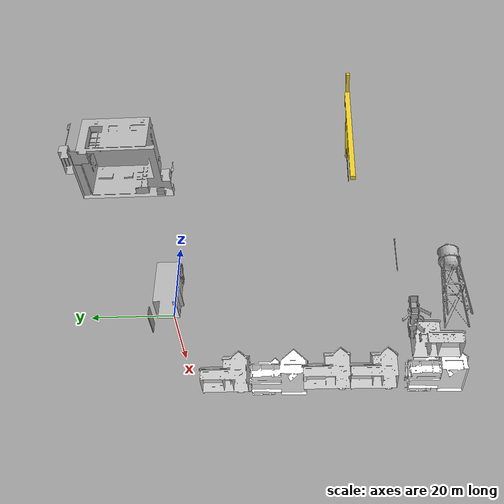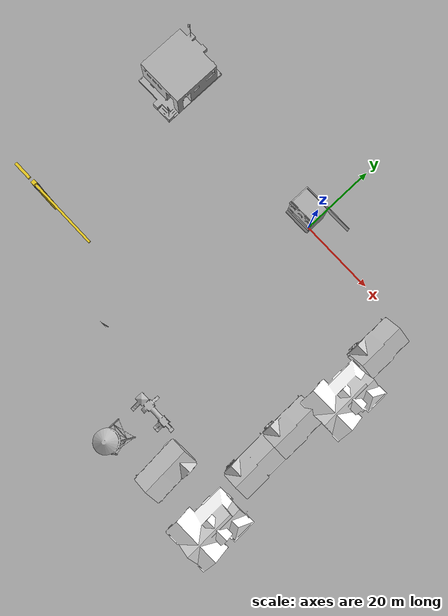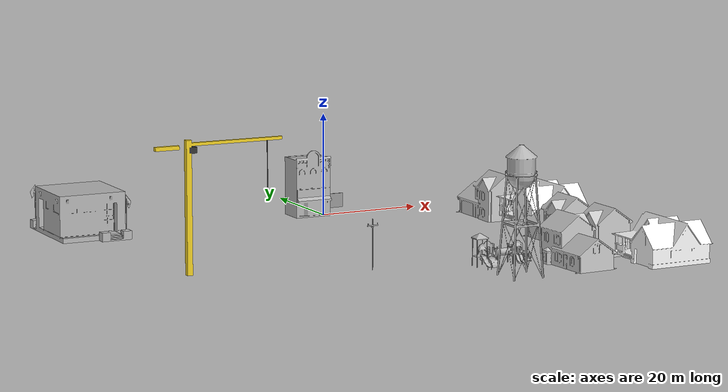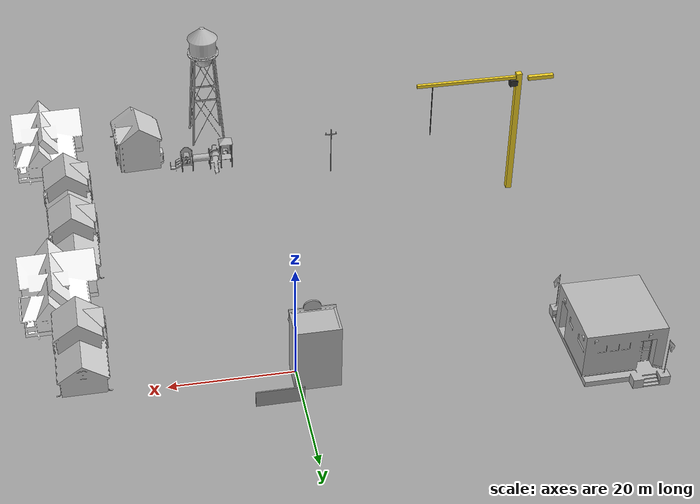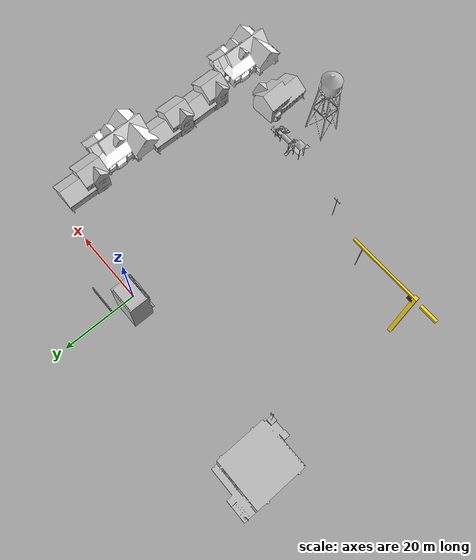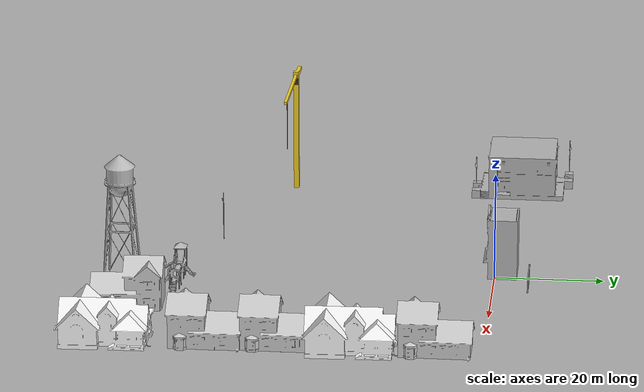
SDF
<?xml version='1.0'?>
<sdf version='1.6'>
  <model name='dev2'>
    <model name='House 1'>
      <static>1</static>
      <link name='link'>
        <collision name='collision'>
          <geometry>
            <mesh>
              <uri>model://house_1/meshes/house_1.dae</uri>
              <scale>1.5 1.5 1.5</scale>
            </mesh>
          </geometry>
        </collision>
        <visual name='visual'>
          <geometry>
            <mesh>
              <uri>model://house_1/meshes/house_1.dae</uri>
              <scale>1.5 1.5 1.5</scale>
            </mesh>
          </geometry>
          <material>
            <script>
              <uri>model://house_1/materials/scripts</uri>
              <uri>model://house_1/materials/textures</uri>
              <name>House_1/Diffuse</name>
            </script>
            <shader type='normal_map_tangent_space'>
              <normal_map>House_1_Normal.png</normal_map>
            </shader>
          </material>
        </visual>
      </link>
      <pose frame=''>35.6283 -23.3265 -0 0 0 -1.54507</pose>
    </model>
    <model name='House 1_clone'>
      <static>1</static>
      <link name='link'>
        <collision name='collision'>
          <geometry>
            <mesh>
              <uri>model://house_1/meshes/house_1.dae</uri>
              <scale>1.5 1.5 1.5</scale>
            </mesh>
          </geometry>
        </collision>
        <visual name='visual'>
          <geometry>
            <mesh>
              <uri>model://house_1/meshes/house_1.dae</uri>
              <scale>1.5 1.5 1.5</scale>
            </mesh>
          </geometry>
          <material>
            <script>
              <uri>model://house_1/materials/scripts</uri>
              <uri>model://house_1/materials/textures</uri>
              <name>House_1/Diffuse</name>
            </script>
            <shader type='normal_map_tangent_space'>
              <normal_map>House_1_Normal.png</normal_map>
            </shader>
          </material>
        </visual>
      </link>
      <pose frame=''>35.5837 -66.3065 0 0 0 -1.54507</pose>
    </model>
    <model name='House 3'>
      <static>1</static>
      <link name='link'>
        <collision name='collision'>
          <geometry>
            <mesh>
              <uri>model://house_3/meshes/house_3.dae</uri>
              <scale>1.5 1.5 1.5</scale>
            </mesh>
          </geometry>
        </collision>
        <visual name='visual'>
          <geometry>
            <mesh>
              <uri>model://house_3/meshes/house_3.dae</uri>
              <scale>1.5 1.5 1.5</scale>
            </mesh>
          </geometry>
          <material>
            <script>
              <uri>model://house_3/materials/scripts</uri>
              <uri>model://house_3/materials/textures</uri>
              <uri>model://house_1/materials/textures</uri>
              <name>House_3/Diffuse</name>
            </script>
            <shader type='normal_map_tangent_space'>
              <normal_map>model://house_1/materials/textures/House_1_Normal.png</normal_map>
            </shader>
          </material>
        </visual>
      </link>
      <pose frame=''>32.5908 -8.06289 -1.46227 0 -0 1.57153</pose>
    </model>
    <model name='House 3_clone'>
      <static>1</static>
      <link name='link'>
        <collision name='collision'>
          <geometry>
            <mesh>
              <uri>model://house_3/meshes/house_3.dae</uri>
              <scale>1.5 1.5 1.5</scale>
            </mesh>
          </geometry>
        </collision>
        <visual name='visual'>
          <geometry>
            <mesh>
              <uri>model://house_3/meshes/house_3.dae</uri>
              <scale>1.5 1.5 1.5</scale>
            </mesh>
          </geometry>
          <material>
            <script>
              <uri>model://house_3/materials/scripts</uri>
              <uri>model://house_3/materials/textures</uri>
              <uri>model://house_1/materials/textures</uri>
              <name>House_3/Diffuse</name>
            </script>
            <shader type='normal_map_tangent_space'>
              <normal_map>model://house_1/materials/textures/House_1_Normal.png</normal_map>
            </shader>
          </material>
        </visual>
      </link>
      <pose frame=''>32.0612 -35.724 -1.46227 0 -0 1.57149</pose>
    </model>
    <model name='House 3_clone_0'>
      <static>1</static>
      <link name='link'>
        <collision name='collision'>
          <geometry>
            <mesh>
              <uri>model://house_3/meshes/house_3.dae</uri>
              <scale>1.5 1.5 1.5</scale>
            </mesh>
          </geometry>
        </collision>
        <visual name='visual'>
          <geometry>
            <mesh>
              <uri>model://house_3/meshes/house_3.dae</uri>
              <scale>1.5 1.5 1.5</scale>
            </mesh>
          </geometry>
          <material>
            <script>
              <uri>model://house_3/materials/scripts</uri>
              <uri>model://house_3/materials/textures</uri>
              <uri>model://house_1/materials/textures</uri>
              <name>House_3/Diffuse</name>
            </script>
            <shader type='normal_map_tangent_space'>
              <normal_map>model://house_1/materials/textures/House_1_Normal.png</normal_map>
            </shader>
          </material>
        </visual>
      </link>
      <pose frame=''>32.3821 -48.4074 -1.46227 0 -0 1.58888</pose>
    </model>
    <model name='House 3_clone_0_clone'>
      <static>1</static>
      <link name='link'>
        <collision name='collision'>
          <geometry>
            <mesh>
              <uri>model://house_3/meshes/house_3.dae</uri>
              <scale>1.5 1.5 1.5</scale>
            </mesh>
          </geometry>
        </collision>
        <visual name='visual'>
          <geometry>
            <mesh>
              <uri>model://house_3/meshes/house_3.dae</uri>
              <scale>1.5 1.5 1.5</scale>
            </mesh>
          </geometry>
          <material>
            <script>
              <uri>model://house_3/materials/scripts</uri>
              <uri>model://house_3/materials/textures</uri>
              <uri>model://house_1/materials/textures</uri>
              <name>House_3/Diffuse</name>
            </script>
            <shader type='normal_map_tangent_space'>
              <normal_map>model://house_1/materials/textures/House_1_Normal.png</normal_map>
            </shader>
          </material>
        </visual>
      </link>
      <pose frame=''>18.967 -65.2891 0 0 0 -1.51444</pose>
    </model>
    <model name='grey_wall'>
      <static>1</static>
      <link name='link'>
        <pose frame=''>0 0 1.4 0 -0 0</pose>
        <collision name='collision'>
          <geometry>
            <box>
              <size>7.5 0.2 2.8</size>
            </box>
          </geometry>
        </collision>
        <visual name='visual'>
          <cast_shadows>0</cast_shadows>
          <geometry>
            <box>
              <size>7.5 0.2 2.8</size>
            </box>
          </geometry>
          <material>
            <script>
              <uri>model://grey_wall/materials/scripts</uri>
              <uri>model://grey_wall/materials/textures</uri>
              <name>vrc/grey_wall</name>
            </script>
          </material>
        </visual>
      </link>
      <pose frame=''>3.5126 6.38805 0 0 -0 0</pose>
    </model>
    <model name='playground'>
      <static>1</static>
      <link name='link'>
        <collision name='collision'>
          <geometry>
            <mesh>
              <uri>model://playground/meshes/playground.dae</uri>
            </mesh>
          </geometry>
        </collision>
        <visual name='visual'>
          <geometry>
            <mesh>
              <uri>model://playground/meshes/playground.dae</uri>
            </mesh>
          </geometry>
        </visual>
      </link>
      <pose frame=''>7.62744 -58.0299 0 0 -0 0</pose>
    </model>
    <model name='police_station'>
      <static>1</static>
      <link name='link'>
        <collision name='collision_main'>
          <pose frame=''>0 0 4.28998 0 -0 0</pose>
          <geometry>
            <box>
              <size>13.037 13.037 8.57995</size>
            </box>
          </geometry>
        </collision>
        <collision name='collision_landing'>
          <pose frame=''>0 0 0.464086 0 -0 0</pose>
          <geometry>
            <box>
              <size>13.037 16.2446 0.928173</size>
            </box>
          </geometry>
        </collision>
        <visual name='visual'>
          <geometry>
            <mesh>
              <uri>model://police_station/meshes/police_station.dae</uri>
            </mesh>
          </geometry>
        </visual>
      </link>
      <pose frame=''>-49.527 3.12303 0 0 -0 0</pose>
    </model>
    <model name='salon'>
      <static>1</static>
      <link name='link'>
        <collision name='collision'>
          <pose frame=''>0 0 5.69469 0 -0 0</pose>
          <geometry>
            <box>
              <size>7.21297 5.37875 11.3894</size>
            </box>
          </geometry>
        </collision>
        <visual name='visual'>
          <pose frame=''>0 -0.903605 0 0 -0 0</pose>
          <geometry>
            <mesh>
              <uri>model://salon/meshes/salon.dae</uri>
            </mesh>
          </geometry>
        </visual>
      </link>
      <pose frame=''>-2.7693 1.46514 0 0 -0 0</pose>
    </model>
    <model name='stone_10_2_5_1cm'>
      <link name='link'>
        <pose frame=''>0 0 0.005 0 -0 0</pose>
        <inertial>
          <mass>0.0628</mass>
          <inertia>
            <ixx>3.79417e-06</ixx>
            <ixy>0</ixy>
            <ixz>0</ixz>
            <iyy>5.28567e-05</iyy>
            <iyz>0</iyz>
            <izz>5.56042e-05</izz>
          </inertia>
        </inertial>
        <collision name='collision'>
          <geometry>
            <box>
              <size>0.1 0.025 0.01</size>
            </box>
          </geometry>
          <surface>
            <contact>
              <poissons_ratio>0.15</poissons_ratio>
              <elastic_modulus>8e+10</elastic_modulus>
              <ode>
                <kp>100000</kp>
                <kd>100</kd>
                <max_vel>100</max_vel>
                <min_depth>0.001</min_depth>
              </ode>
            </contact>
            <friction>
              <torsional>
                <coefficient>1</coefficient>
                <use_patch_radius>0</use_patch_radius>
                <surface_radius>0.01</surface_radius>
              </torsional>
            </friction>
          </surface>
        </collision>
        <visual name='visual'>
          <geometry>
            <box>
              <size>0.1 0.025 0.01</size>
            </box>
          </geometry>
          <material>
            <script>
              <uri>file://media/materials/scripts/gazebo.material</uri>
              <name>Gazebo/Grey</name>
            </script>
          </material>
        </visual>
      </link>
      <pose frame=''>1.11383 -15.7892 0 0 -0 0</pose>
    </model>
    <model name='telephone_pole'>
      <static>1</static>
      <link name='link'>
        <collision name='collision_pole'>
          <pose frame=''>0 0 4.572 0 -0 0</pose>
          <geometry>
            <cylinder>
              <radius>0.0779475</radius>
              <length>9.144</length>
            </cylinder>
          </geometry>
        </collision>
        <collision name='collision_cross'>
          <pose frame=''>0 -0.098806 8.04836 0 -0 0</pose>
          <geometry>
            <box>
              <size>2.11606 0.041763 0.177806</size>
            </box>
          </geometry>
        </collision>
        <visual name='visual'>
          <geometry>
            <mesh>
              <uri>model://telephone_pole/meshes/telephone_pole.dae</uri>
            </mesh>
          </geometry>
        </visual>
      </link>
      <pose frame=''>-15.599 -52.1918 0 0 -0 0</pose>
    </model>
    <model name='tower_crane'>
      <static>1</static>
      <link name='link'>
        <collision name='collision'>
          <geometry>
            <mesh>
              <uri>model://tower_crane/meshes/tower_crane.dae</uri>
            </mesh>
          </geometry>
        </collision>
        <visual name='visual'>
          <geometry>
            <mesh>
              <uri>model://tower_crane/meshes/tower_crane.dae</uri>
            </mesh>
          </geometry>
        </visual>
      </link>
      <pose frame=''>-46.3547 -41.7693 0 0 -0 0</pose>
    </model>
    <model name='water_tower'>
      <static>1</static>
      <link name='link'>
        <collision name='collision'>
          <geometry>
            <mesh>
              <uri>model://water_tower/meshes/water_tower.dae</uri>
            </mesh>
          </geometry>
        </collision>
        <visual name='visual'>
          <geometry>
            <mesh>
              <uri>model://water_tower/meshes/water_tower.dae</uri>
            </mesh>
          </geometry>
        </visual>
      </link>
      <pose frame=''>5.36456 -68.1812 0 0 -0 0</pose>
    </model>
    <static>1</static>
    <allow_auto_disable>1</allow_auto_disable>
  </model>
</sdf>
